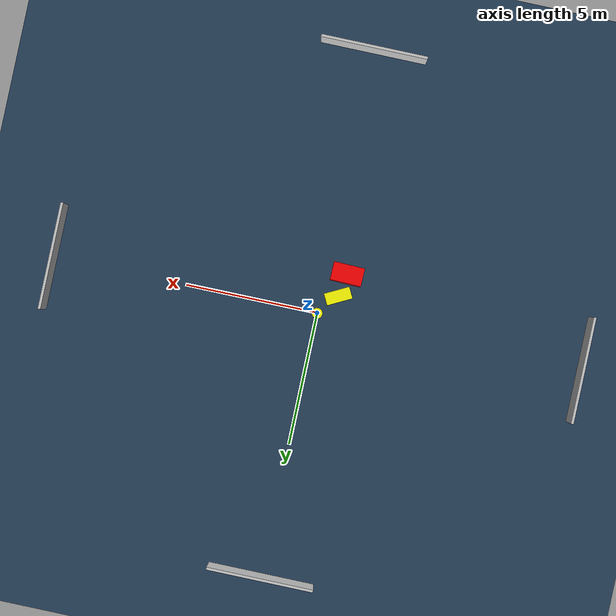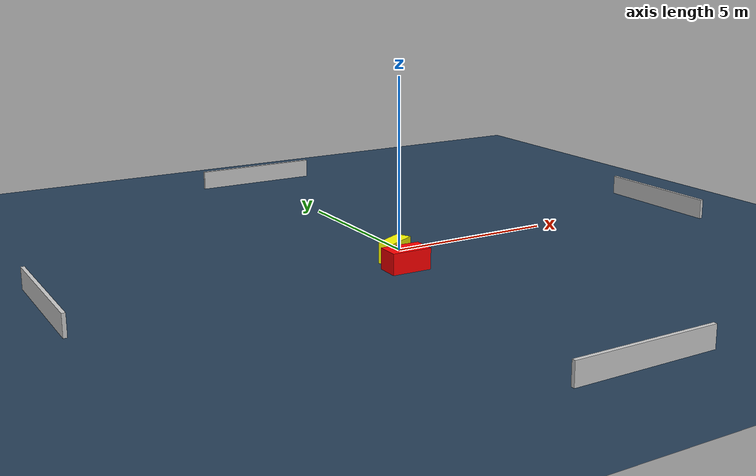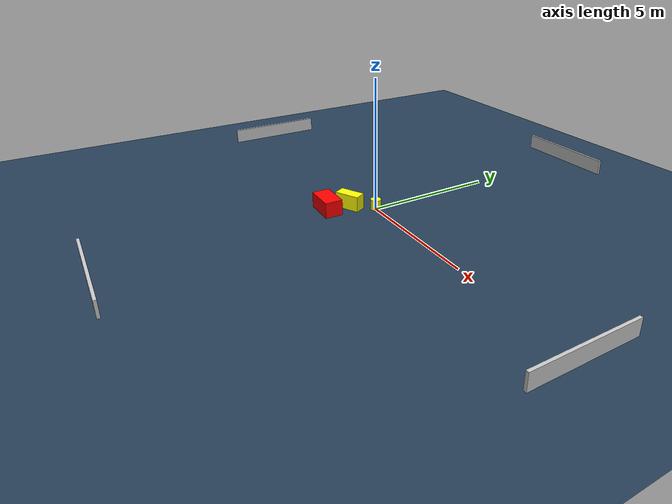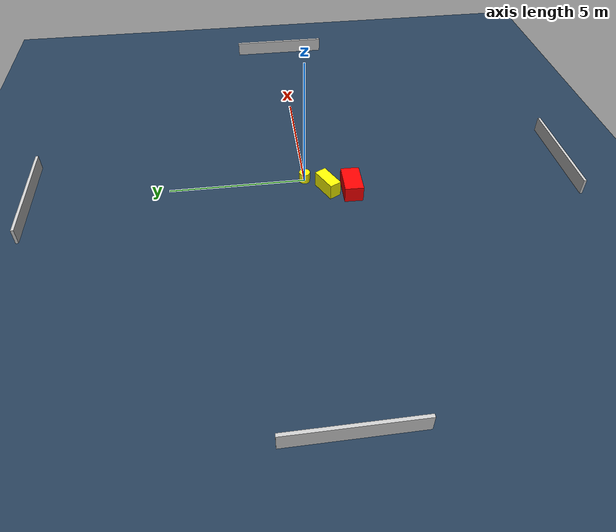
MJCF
<?xml version="1.0" ?>
<mujoco model="generated_environment">
  <option timestep="0.01" integrator="RK4" cone="elliptic"/>
  <default>
    <geom density="1"/>
  </default>
  <asset>
    <texture builtin="gradient" height="3072" name="skybox" rgb1="0.3 0.5 0.7" rgb2="0 0 0" type="skybox" width="512"/>
    <texture builtin="checker" height="300" name="groundplane" rgb1="0.2 0.3 0.4" rgb2="0.1 0.2 0.3" type="2d" width="300"/>
    <material name="groundplane" reflectance="0.2" texrepeat="5 5" texture="groundplane"/>
  </asset>
  <worldbody>
    <light dir="0 0 -1" directional="true" pos="0 0 1.5"/>
    <geom condim="3" friction="0.5 0.005 0.001" material="groundplane" name="floor" pos="0 0 0" size="0 0 0.05" type="plane"/>
    <body name="walls">
      <geom name="wall_1" condim="4" pos="-10.0 0.0 0.3" rgba="0.800000011920929 0.800000011920929 0.800000011920929 1.0" size="0.05 2.0 0.3" type="box"/>
      <geom name="wall_2" condim="4" pos="10.0 0.0 0.3" rgba="0.800000011920929 0.800000011920929 0.800000011920929 1.0" size="0.05 2.0 0.3" type="box"/>
      <geom name="wall_3" condim="4" pos="0.0 -10.0 0.3" rgba="0.800000011920929 0.800000011920929 0.800000011920929 1.0" size="2.0 0.05 0.3" type="box"/>
      <geom name="wall_4" condim="4" pos="0.0 10.0 0.3" rgba="0.800000011920929 0.800000011920929 0.800000011920929 1.0" size="2.0 0.05 0.3" type="box"/>
    </body>
    <body name="robot">
      <joint name="joint_x" type="slide" pos="0 0 0" axis="1 0 0"/>
      <joint name="joint_y" type="slide" pos="0 0 0" axis="0 1 0"/>
      <geom name="robot" type="cylinder" pos="0.0 0.0 0.2" size="0.2 0.2 0.0" mass="5.0" friction="1.0 0.005 0.0001" condim="4" rgba="1.0 1.0 0.0 1.0"/>
    </body>
    <body name="obstacle_1_movable">
      <geom name="obstacle_1_movable" condim="4" pos="-0.6232656296486292 -0.7764381309859925 0.3" euler="0 0 117.45481746833222" friction="0.0 0.005 0.001" rgba="1.0 1.0 0.0 1.0" size="0.22369841444528682 0.48391556886497766 0.3" type="box" mass="0.1"/>
      <joint type="free"/>
    </body>
    <body name="obstacle_2_static">
      <geom name="obstacle_2_static" condim="4" pos="-0.7861116787370941 -1.6420025125096176 0.3" euler="0 0 88.7215847714749" friction="0.0 0.005 0.001" rgba="1.0 0.0 0.0 1.0" size="0.33898696178945686 0.5804749656473964 0.3" type="box"/>
    </body>
  </worldbody>
  <actuator>
    <motor name="actuator_x" joint="joint_x" gear="1" ctrlrange="-1 1"/>
    <motor name="actuator_y" joint="joint_y" gear="1" ctrlrange="-1 1"/>
  </actuator>
</mujoco>
